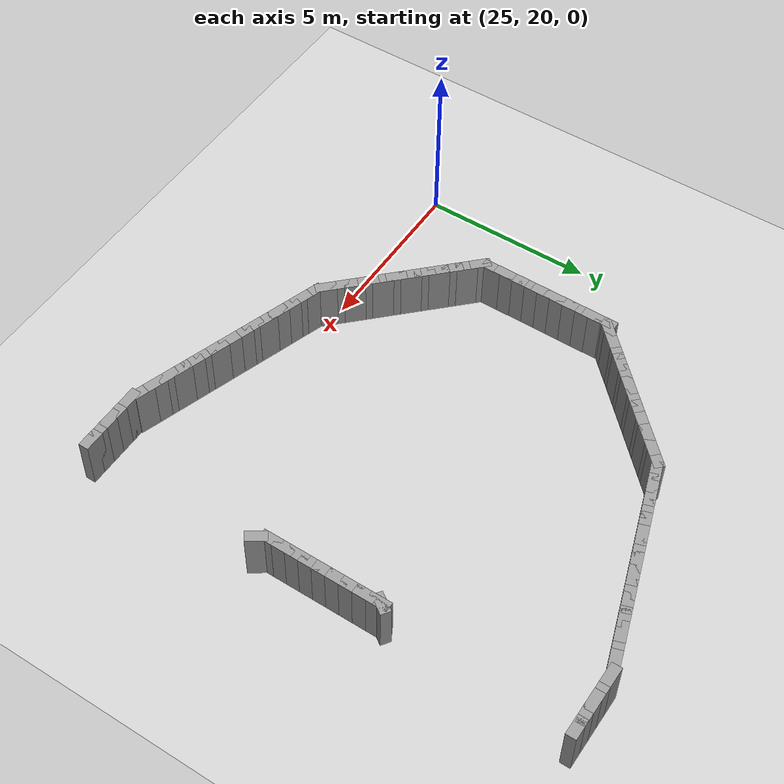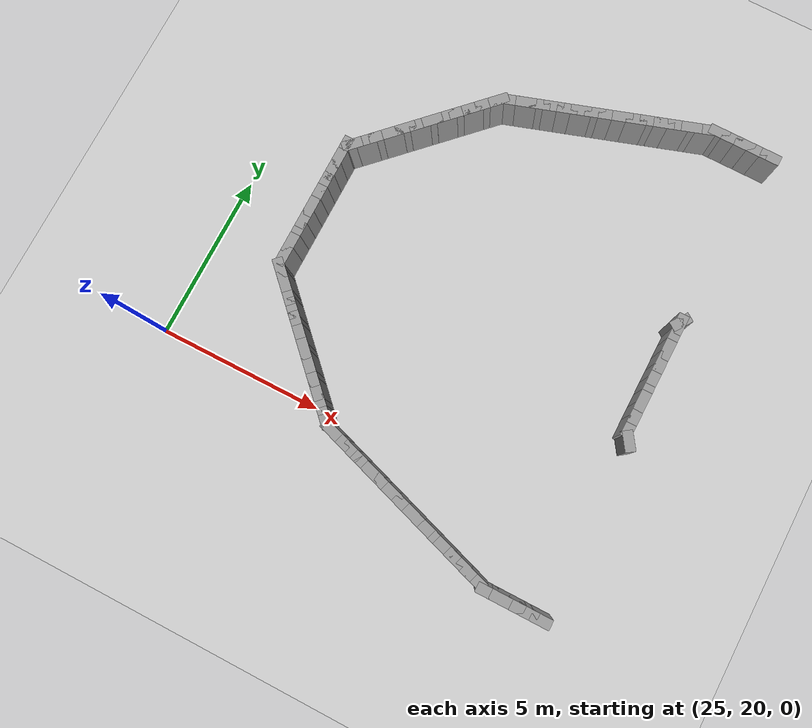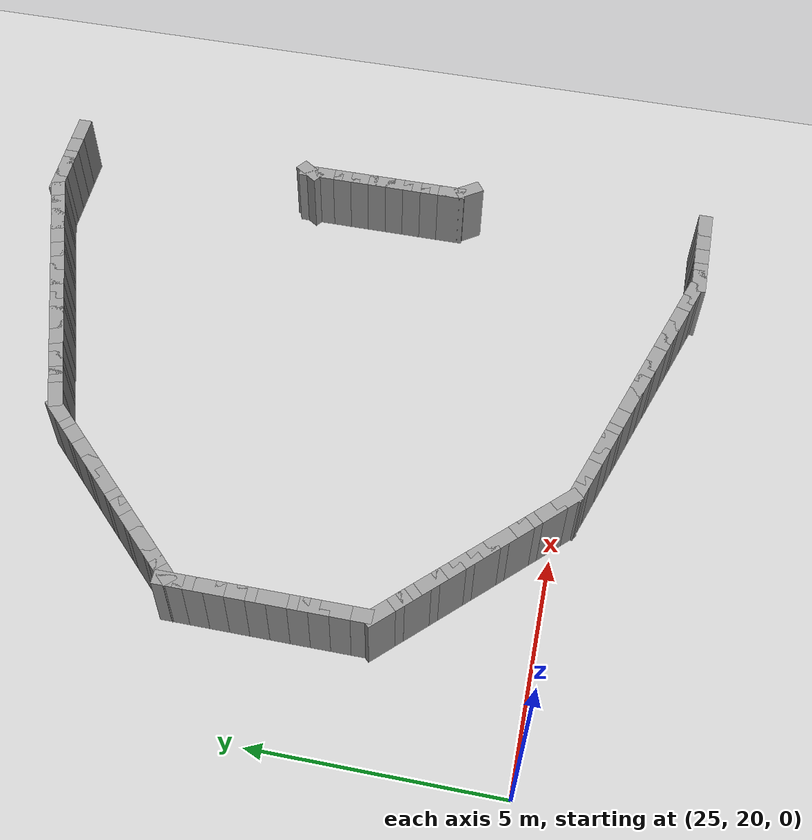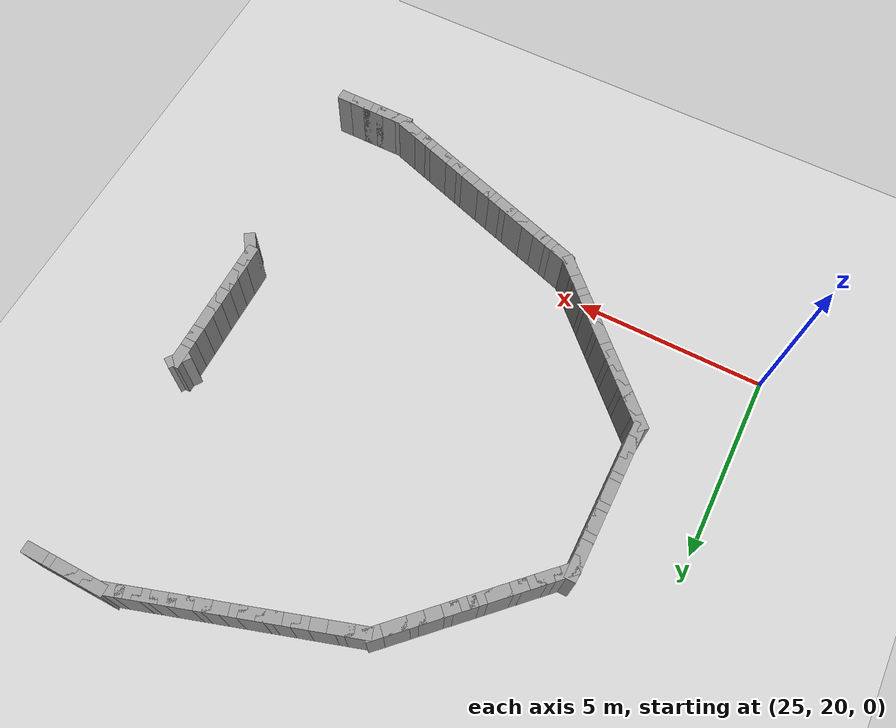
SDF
<sdf version="1.5">
 <world name="test_variable_width">
  <include><uri>model://sun</uri></include>
  <include><uri>model://ground_plane</uri></include>
  <model name="curbL_0">
   <static>true</static>
   <pose>27.376 26.938 0.750 0 0 -1.571</pose>
   <link name="link">
    <collision name="col"><geometry><box><size>0.600 0.300 1.500</size></box></geometry></collision>
    <visual name="vis">
     <geometry><box><size>0.600 0.300 1.500</size></box></geometry>
     <material><ambient>0.6 0.6 0.6 1</ambient><diffuse>0.6 0.6 0.6 1</diffuse></material>
    </visual>
   </link>
  </model>
  <model name="curbL_1">
   <static>true</static>
   <pose>27.376 26.538 0.750 0 0 -1.571</pose>
   <link name="link">
    <collision name="col"><geometry><box><size>0.600 0.300 1.500</size></box></geometry></collision>
    <visual name="vis">
     <geometry><box><size>0.600 0.300 1.500</size></box></geometry>
     <material><ambient>0.6 0.6 0.6 1</ambient><diffuse>0.6 0.6 0.6 1</diffuse></material>
    </visual>
   </link>
  </model>
  <model name="curbL_2">
   <static>true</static>
   <pose>27.376 26.138 0.750 0 0 -1.571</pose>
   <link name="link">
    <collision name="col"><geometry><box><size>0.600 0.300 1.500</size></box></geometry></collision>
    <visual name="vis">
     <geometry><box><size>0.600 0.300 1.500</size></box></geometry>
     <material><ambient>0.6 0.6 0.6 1</ambient><diffuse>0.6 0.6 0.6 1</diffuse></material>
    </visual>
   </link>
  </model>
  <model name="curbL_3">
   <static>true</static>
   <pose>27.376 25.738 0.750 0 0 -1.571</pose>
   <link name="link">
    <collision name="col"><geometry><box><size>0.600 0.300 1.500</size></box></geometry></collision>
    <visual name="vis">
     <geometry><box><size>0.600 0.300 1.500</size></box></geometry>
     <material><ambient>0.6 0.6 0.6 1</ambient><diffuse>0.6 0.6 0.6 1</diffuse></material>
    </visual>
   </link>
  </model>
  <model name="curbL_4">
   <static>true</static>
   <pose>27.376 25.338 0.750 0 0 -1.571</pose>
   <link name="link">
    <collision name="col"><geometry><box><size>0.600 0.300 1.500</size></box></geometry></collision>
    <visual name="vis">
     <geometry><box><size>0.600 0.300 1.500</size></box></geometry>
     <material><ambient>0.6 0.6 0.6 1</ambient><diffuse>0.6 0.6 0.6 1</diffuse></material>
    </visual>
   </link>
  </model>
  <model name="curbL_5">
   <static>true</static>
   <pose>27.376 24.938 0.750 0 0 -1.571</pose>
   <link name="link">
    <collision name="col"><geometry><box><size>0.600 0.300 1.500</size></box></geometry></collision>
    <visual name="vis">
     <geometry><box><size>0.600 0.300 1.500</size></box></geometry>
     <material><ambient>0.6 0.6 0.6 1</ambient><diffuse>0.6 0.6 0.6 1</diffuse></material>
    </visual>
   </link>
  </model>
  <model name="curbL_6">
   <static>true</static>
   <pose>27.376 24.538 0.750 0 0 -1.571</pose>
   <link name="link">
    <collision name="col"><geometry><box><size>0.600 0.300 1.500</size></box></geometry></collision>
    <visual name="vis">
     <geometry><box><size>0.600 0.300 1.500</size></box></geometry>
     <material><ambient>0.6 0.6 0.6 1</ambient><diffuse>0.6 0.6 0.6 1</diffuse></material>
    </visual>
   </link>
  </model>
  <model name="curbL_7">
   <static>true</static>
   <pose>27.376 24.138 0.750 0 0 -1.571</pose>
   <link name="link">
    <collision name="col"><geometry><box><size>0.600 0.300 1.500</size></box></geometry></collision>
    <visual name="vis">
     <geometry><box><size>0.600 0.300 1.500</size></box></geometry>
     <material><ambient>0.6 0.6 0.6 1</ambient><diffuse>0.6 0.6 0.6 1</diffuse></material>
    </visual>
   </link>
  </model>
  <model name="curbL_8">
   <static>true</static>
   <pose>27.376 23.738 0.750 0 0 -1.571</pose>
   <link name="link">
    <collision name="col"><geometry><box><size>0.600 0.300 1.500</size></box></geometry></collision>
    <visual name="vis">
     <geometry><box><size>0.600 0.300 1.500</size></box></geometry>
     <material><ambient>0.6 0.6 0.6 1</ambient><diffuse>0.6 0.6 0.6 1</diffuse></material>
    </visual>
   </link>
  </model>
  <model name="curbL_9">
   <static>true</static>
   <pose>27.376 23.338 0.750 0 0 -1.571</pose>
   <link name="link">
    <collision name="col"><geometry><box><size>0.600 0.300 1.500</size></box></geometry></collision>
    <visual name="vis">
     <geometry><box><size>0.600 0.300 1.500</size></box></geometry>
     <material><ambient>0.6 0.6 0.6 1</ambient><diffuse>0.6 0.6 0.6 1</diffuse></material>
    </visual>
   </link>
  </model>
  <model name="curbL_10">
   <static>true</static>
   <pose>27.464 22.974 0.750 0 0 -0.784</pose>
   <link name="link">
    <collision name="col"><geometry><box><size>0.600 0.300 1.500</size></box></geometry></collision>
    <visual name="vis">
     <geometry><box><size>0.600 0.300 1.500</size></box></geometry>
     <material><ambient>0.6 0.6 0.6 1</ambient><diffuse>0.6 0.6 0.6 1</diffuse></material>
    </visual>
   </link>
  </model>
  <model name="curbL_11">
   <static>true</static>
   <pose>27.748 22.692 0.750 0 0 -0.784</pose>
   <link name="link">
    <collision name="col"><geometry><box><size>0.600 0.300 1.500</size></box></geometry></collision>
    <visual name="vis">
     <geometry><box><size>0.600 0.300 1.500</size></box></geometry>
     <material><ambient>0.6 0.6 0.6 1</ambient><diffuse>0.6 0.6 0.6 1</diffuse></material>
    </visual>
   </link>
  </model>
  <model name="curbL_12">
   <static>true</static>
   <pose>28.031 22.409 0.750 0 0 -0.784</pose>
   <link name="link">
    <collision name="col"><geometry><box><size>0.600 0.300 1.500</size></box></geometry></collision>
    <visual name="vis">
     <geometry><box><size>0.600 0.300 1.500</size></box></geometry>
     <material><ambient>0.6 0.6 0.6 1</ambient><diffuse>0.6 0.6 0.6 1</diffuse></material>
    </visual>
   </link>
  </model>
  <model name="curbL_13">
   <static>true</static>
   <pose>28.314 22.127 0.750 0 0 -0.784</pose>
   <link name="link">
    <collision name="col"><geometry><box><size>0.600 0.300 1.500</size></box></geometry></collision>
    <visual name="vis">
     <geometry><box><size>0.600 0.300 1.500</size></box></geometry>
     <material><ambient>0.6 0.6 0.6 1</ambient><diffuse>0.6 0.6 0.6 1</diffuse></material>
    </visual>
   </link>
  </model>
  <model name="curbL_14">
   <static>true</static>
   <pose>28.597 21.844 0.750 0 0 -0.784</pose>
   <link name="link">
    <collision name="col"><geometry><box><size>0.600 0.300 1.500</size></box></geometry></collision>
    <visual name="vis">
     <geometry><box><size>0.600 0.300 1.500</size></box></geometry>
     <material><ambient>0.6 0.6 0.6 1</ambient><diffuse>0.6 0.6 0.6 1</diffuse></material>
    </visual>
   </link>
  </model>
  <model name="curbL_15">
   <static>true</static>
   <pose>28.880 21.562 0.750 0 0 -0.784</pose>
   <link name="link">
    <collision name="col"><geometry><box><size>0.600 0.300 1.500</size></box></geometry></collision>
    <visual name="vis">
     <geometry><box><size>0.600 0.300 1.500</size></box></geometry>
     <material><ambient>0.6 0.6 0.6 1</ambient><diffuse>0.6 0.6 0.6 1</diffuse></material>
    </visual>
   </link>
  </model>
  <model name="curbL_16">
   <static>true</static>
   <pose>29.163 21.279 0.750 0 0 -0.784</pose>
   <link name="link">
    <collision name="col"><geometry><box><size>0.600 0.300 1.500</size></box></geometry></collision>
    <visual name="vis">
     <geometry><box><size>0.600 0.300 1.500</size></box></geometry>
     <material><ambient>0.6 0.6 0.6 1</ambient><diffuse>0.6 0.6 0.6 1</diffuse></material>
    </visual>
   </link>
  </model>
  <model name="curbL_17">
   <static>true</static>
   <pose>29.447 20.997 0.750 0 0 -0.784</pose>
   <link name="link">
    <collision name="col"><geometry><box><size>0.600 0.300 1.500</size></box></geometry></collision>
    <visual name="vis">
     <geometry><box><size>0.600 0.300 1.500</size></box></geometry>
     <material><ambient>0.6 0.6 0.6 1</ambient><diffuse>0.6 0.6 0.6 1</diffuse></material>
    </visual>
   </link>
  </model>
  <model name="curbL_18">
   <static>true</static>
   <pose>29.730 20.714 0.750 0 0 -0.784</pose>
   <link name="link">
    <collision name="col"><geometry><box><size>0.600 0.300 1.500</size></box></geometry></collision>
    <visual name="vis">
     <geometry><box><size>0.600 0.300 1.500</size></box></geometry>
     <material><ambient>0.6 0.6 0.6 1</ambient><diffuse>0.6 0.6 0.6 1</diffuse></material>
    </visual>
   </link>
  </model>
  <model name="curbL_19">
   <static>true</static>
   <pose>30.013 20.432 0.750 0 0 -0.784</pose>
   <link name="link">
    <collision name="col"><geometry><box><size>0.600 0.300 1.500</size></box></geometry></collision>
    <visual name="vis">
     <geometry><box><size>0.600 0.300 1.500</size></box></geometry>
     <material><ambient>0.6 0.6 0.6 1</ambient><diffuse>0.6 0.6 0.6 1</diffuse></material>
    </visual>
   </link>
  </model>
  <model name="curbL_20">
   <static>true</static>
   <pose>30.296 20.149 0.750 0 0 -0.784</pose>
   <link name="link">
    <collision name="col"><geometry><box><size>0.600 0.300 1.500</size></box></geometry></collision>
    <visual name="vis">
     <geometry><box><size>0.600 0.300 1.500</size></box></geometry>
     <material><ambient>0.6 0.6 0.6 1</ambient><diffuse>0.6 0.6 0.6 1</diffuse></material>
    </visual>
   </link>
  </model>
  <model name="curbL_21">
   <static>true</static>
   <pose>30.579 19.867 0.750 0 0 -0.784</pose>
   <link name="link">
    <collision name="col"><geometry><box><size>0.600 0.300 1.500</size></box></geometry></collision>
    <visual name="vis">
     <geometry><box><size>0.600 0.300 1.500</size></box></geometry>
     <material><ambient>0.6 0.6 0.6 1</ambient><diffuse>0.6 0.6 0.6 1</diffuse></material>
    </visual>
   </link>
  </model>
  <model name="curbL_22">
   <static>true</static>
   <pose>30.906 19.655 0.750 0 0 -0.316</pose>
   <link name="link">
    <collision name="col"><geometry><box><size>0.600 0.300 1.500</size></box></geometry></collision>
    <visual name="vis">
     <geometry><box><size>0.600 0.300 1.500</size></box></geometry>
     <material><ambient>0.6 0.6 0.6 1</ambient><diffuse>0.6 0.6 0.6 1</diffuse></material>
    </visual>
   </link>
  </model>
  <model name="curbL_23">
   <static>true</static>
   <pose>31.286 19.530 0.750 0 0 -0.316</pose>
   <link name="link">
    <collision name="col"><geometry><box><size>0.600 0.300 1.500</size></box></geometry></collision>
    <visual name="vis">
     <geometry><box><size>0.600 0.300 1.500</size></box></geometry>
     <material><ambient>0.6 0.6 0.6 1</ambient><diffuse>0.6 0.6 0.6 1</diffuse></material>
    </visual>
   </link>
  </model>
  <model name="curbL_24">
   <static>true</static>
   <pose>31.666 19.406 0.750 0 0 -0.316</pose>
   <link name="link">
    <collision name="col"><geometry><box><size>0.600 0.300 1.500</size></box></geometry></collision>
    <visual name="vis">
     <geometry><box><size>0.600 0.300 1.500</size></box></geometry>
     <material><ambient>0.6 0.6 0.6 1</ambient><diffuse>0.6 0.6 0.6 1</diffuse></material>
    </visual>
   </link>
  </model>
  <model name="curbL_25">
   <static>true</static>
   <pose>32.046 19.282 0.750 0 0 -0.316</pose>
   <link name="link">
    <collision name="col"><geometry><box><size>0.600 0.300 1.500</size></box></geometry></collision>
    <visual name="vis">
     <geometry><box><size>0.600 0.300 1.500</size></box></geometry>
     <material><ambient>0.6 0.6 0.6 1</ambient><diffuse>0.6 0.6 0.6 1</diffuse></material>
    </visual>
   </link>
  </model>
  <model name="curbL_26">
   <static>true</static>
   <pose>32.426 19.158 0.750 0 0 -0.316</pose>
   <link name="link">
    <collision name="col"><geometry><box><size>0.600 0.300 1.500</size></box></geometry></collision>
    <visual name="vis">
     <geometry><box><size>0.600 0.300 1.500</size></box></geometry>
     <material><ambient>0.6 0.6 0.6 1</ambient><diffuse>0.6 0.6 0.6 1</diffuse></material>
    </visual>
   </link>
  </model>
  <model name="curbL_27">
   <static>true</static>
   <pose>32.807 19.033 0.750 0 0 -0.316</pose>
   <link name="link">
    <collision name="col"><geometry><box><size>0.600 0.300 1.500</size></box></geometry></collision>
    <visual name="vis">
     <geometry><box><size>0.600 0.300 1.500</size></box></geometry>
     <material><ambient>0.6 0.6 0.6 1</ambient><diffuse>0.6 0.6 0.6 1</diffuse></material>
    </visual>
   </link>
  </model>
  <model name="curbL_28">
   <static>true</static>
   <pose>33.187 18.909 0.750 0 0 -0.316</pose>
   <link name="link">
    <collision name="col"><geometry><box><size>0.600 0.300 1.500</size></box></geometry></collision>
    <visual name="vis">
     <geometry><box><size>0.600 0.300 1.500</size></box></geometry>
     <material><ambient>0.6 0.6 0.6 1</ambient><diffuse>0.6 0.6 0.6 1</diffuse></material>
    </visual>
   </link>
  </model>
  <model name="curbL_29">
   <static>true</static>
   <pose>33.567 18.785 0.750 0 0 -0.316</pose>
   <link name="link">
    <collision name="col"><geometry><box><size>0.600 0.300 1.500</size></box></geometry></collision>
    <visual name="vis">
     <geometry><box><size>0.600 0.300 1.500</size></box></geometry>
     <material><ambient>0.6 0.6 0.6 1</ambient><diffuse>0.6 0.6 0.6 1</diffuse></material>
    </visual>
   </link>
  </model>
  <model name="curbL_30">
   <static>true</static>
   <pose>33.947 18.661 0.750 0 0 -0.316</pose>
   <link name="link">
    <collision name="col"><geometry><box><size>0.600 0.300 1.500</size></box></geometry></collision>
    <visual name="vis">
     <geometry><box><size>0.600 0.300 1.500</size></box></geometry>
     <material><ambient>0.6 0.6 0.6 1</ambient><diffuse>0.6 0.6 0.6 1</diffuse></material>
    </visual>
   </link>
  </model>
  <model name="curbL_31">
   <static>true</static>
   <pose>34.328 18.536 0.750 0 0 -0.316</pose>
   <link name="link">
    <collision name="col"><geometry><box><size>0.600 0.300 1.500</size></box></geometry></collision>
    <visual name="vis">
     <geometry><box><size>0.600 0.300 1.500</size></box></geometry>
     <material><ambient>0.6 0.6 0.6 1</ambient><diffuse>0.6 0.6 0.6 1</diffuse></material>
    </visual>
   </link>
  </model>
  <model name="curbL_32">
   <static>true</static>
   <pose>34.708 18.412 0.750 0 0 -0.316</pose>
   <link name="link">
    <collision name="col"><geometry><box><size>0.600 0.300 1.500</size></box></geometry></collision>
    <visual name="vis">
     <geometry><box><size>0.600 0.300 1.500</size></box></geometry>
     <material><ambient>0.6 0.6 0.6 1</ambient><diffuse>0.6 0.6 0.6 1</diffuse></material>
    </visual>
   </link>
  </model>
  <model name="curbL_33">
   <static>true</static>
   <pose>35.088 18.288 0.750 0 0 -0.316</pose>
   <link name="link">
    <collision name="col"><geometry><box><size>0.600 0.300 1.500</size></box></geometry></collision>
    <visual name="vis">
     <geometry><box><size>0.600 0.300 1.500</size></box></geometry>
     <material><ambient>0.6 0.6 0.6 1</ambient><diffuse>0.6 0.6 0.6 1</diffuse></material>
    </visual>
   </link>
  </model>
  <model name="curbL_34">
   <static>true</static>
   <pose>35.468 18.163 0.750 0 0 -0.316</pose>
   <link name="link">
    <collision name="col"><geometry><box><size>0.600 0.300 1.500</size></box></geometry></collision>
    <visual name="vis">
     <geometry><box><size>0.600 0.300 1.500</size></box></geometry>
     <material><ambient>0.6 0.6 0.6 1</ambient><diffuse>0.6 0.6 0.6 1</diffuse></material>
    </visual>
   </link>
  </model>
  <model name="curbL_35">
   <static>true</static>
   <pose>35.848 18.039 0.750 0 0 -0.316</pose>
   <link name="link">
    <collision name="col"><geometry><box><size>0.600 0.300 1.500</size></box></geometry></collision>
    <visual name="vis">
     <geometry><box><size>0.600 0.300 1.500</size></box></geometry>
     <material><ambient>0.6 0.6 0.6 1</ambient><diffuse>0.6 0.6 0.6 1</diffuse></material>
    </visual>
   </link>
  </model>
  <model name="curbL_36">
   <static>true</static>
   <pose>36.229 17.915 0.750 0 0 -0.316</pose>
   <link name="link">
    <collision name="col"><geometry><box><size>0.600 0.300 1.500</size></box></geometry></collision>
    <visual name="vis">
     <geometry><box><size>0.600 0.300 1.500</size></box></geometry>
     <material><ambient>0.6 0.6 0.6 1</ambient><diffuse>0.6 0.6 0.6 1</diffuse></material>
    </visual>
   </link>
  </model>
  <model name="curbL_37">
   <static>true</static>
   <pose>36.609 17.791 0.750 0 0 0.000</pose>
   <link name="link">
    <collision name="col"><geometry><box><size>0.600 0.300 1.500</size></box></geometry></collision>
    <visual name="vis">
     <geometry><box><size>0.600 0.300 1.500</size></box></geometry>
     <material><ambient>0.6 0.6 0.6 1</ambient><diffuse>0.6 0.6 0.6 1</diffuse></material>
    </visual>
   </link>
  </model>
  <model name="curbL_38">
   <static>true</static>
   <pose>37.009 17.791 0.750 0 0 0.000</pose>
   <link name="link">
    <collision name="col"><geometry><box><size>0.600 0.300 1.500</size></box></geometry></collision>
    <visual name="vis">
     <geometry><box><size>0.600 0.300 1.500</size></box></geometry>
     <material><ambient>0.6 0.6 0.6 1</ambient><diffuse>0.6 0.6 0.6 1</diffuse></material>
    </visual>
   </link>
  </model>
  <model name="curbL_39">
   <static>true</static>
   <pose>37.409 17.791 0.750 0 0 0.000</pose>
   <link name="link">
    <collision name="col"><geometry><box><size>0.600 0.300 1.500</size></box></geometry></collision>
    <visual name="vis">
     <geometry><box><size>0.600 0.300 1.500</size></box></geometry>
     <material><ambient>0.6 0.6 0.6 1</ambient><diffuse>0.6 0.6 0.6 1</diffuse></material>
    </visual>
   </link>
  </model>
  <model name="curbL_40">
   <static>true</static>
   <pose>37.809 17.791 0.750 0 0 0.000</pose>
   <link name="link">
    <collision name="col"><geometry><box><size>0.600 0.300 1.500</size></box></geometry></collision>
    <visual name="vis">
     <geometry><box><size>0.600 0.300 1.500</size></box></geometry>
     <material><ambient>0.6 0.6 0.6 1</ambient><diffuse>0.6 0.6 0.6 1</diffuse></material>
    </visual>
   </link>
  </model>
  <model name="curbL_41">
   <static>true</static>
   <pose>38.209 17.791 0.750 0 0 0.000</pose>
   <link name="link">
    <collision name="col"><geometry><box><size>0.600 0.300 1.500</size></box></geometry></collision>
    <visual name="vis">
     <geometry><box><size>0.600 0.300 1.500</size></box></geometry>
     <material><ambient>0.6 0.6 0.6 1</ambient><diffuse>0.6 0.6 0.6 1</diffuse></material>
    </visual>
   </link>
  </model>
  <model name="curbL_131">
   <static>true</static>
   <pose>38.298 32.209 0.750 0 0 3.142</pose>
   <link name="link">
    <collision name="col"><geometry><box><size>0.600 0.300 1.500</size></box></geometry></collision>
    <visual name="vis">
     <geometry><box><size>0.600 0.300 1.500</size></box></geometry>
     <material><ambient>0.6 0.6 0.6 1</ambient><diffuse>0.6 0.6 0.6 1</diffuse></material>
    </visual>
   </link>
  </model>
  <model name="curbL_132">
   <static>true</static>
   <pose>37.898 32.209 0.750 0 0 3.142</pose>
   <link name="link">
    <collision name="col"><geometry><box><size>0.600 0.300 1.500</size></box></geometry></collision>
    <visual name="vis">
     <geometry><box><size>0.600 0.300 1.500</size></box></geometry>
     <material><ambient>0.6 0.6 0.6 1</ambient><diffuse>0.6 0.6 0.6 1</diffuse></material>
    </visual>
   </link>
  </model>
  <model name="curbL_133">
   <static>true</static>
   <pose>37.498 32.209 0.750 0 0 3.142</pose>
   <link name="link">
    <collision name="col"><geometry><box><size>0.600 0.300 1.500</size></box></geometry></collision>
    <visual name="vis">
     <geometry><box><size>0.600 0.300 1.500</size></box></geometry>
     <material><ambient>0.6 0.6 0.6 1</ambient><diffuse>0.6 0.6 0.6 1</diffuse></material>
    </visual>
   </link>
  </model>
  <model name="curbL_134">
   <static>true</static>
   <pose>37.098 32.209 0.750 0 0 3.142</pose>
   <link name="link">
    <collision name="col"><geometry><box><size>0.600 0.300 1.500</size></box></geometry></collision>
    <visual name="vis">
     <geometry><box><size>0.600 0.300 1.500</size></box></geometry>
     <material><ambient>0.6 0.6 0.6 1</ambient><diffuse>0.6 0.6 0.6 1</diffuse></material>
    </visual>
   </link>
  </model>
  <model name="curbL_135">
   <static>true</static>
   <pose>36.698 32.209 0.750 0 0 3.142</pose>
   <link name="link">
    <collision name="col"><geometry><box><size>0.600 0.300 1.500</size></box></geometry></collision>
    <visual name="vis">
     <geometry><box><size>0.600 0.300 1.500</size></box></geometry>
     <material><ambient>0.6 0.6 0.6 1</ambient><diffuse>0.6 0.6 0.6 1</diffuse></material>
    </visual>
   </link>
  </model>
  <model name="curbL_136">
   <static>true</static>
   <pose>36.313 32.113 0.750 0 0 -2.826</pose>
   <link name="link">
    <collision name="col"><geometry><box><size>0.600 0.300 1.500</size></box></geometry></collision>
    <visual name="vis">
     <geometry><box><size>0.600 0.300 1.500</size></box></geometry>
     <material><ambient>0.6 0.6 0.6 1</ambient><diffuse>0.6 0.6 0.6 1</diffuse></material>
    </visual>
   </link>
  </model>
  <model name="curbL_137">
   <static>true</static>
   <pose>35.933 31.989 0.750 0 0 -2.826</pose>
   <link name="link">
    <collision name="col"><geometry><box><size>0.600 0.300 1.500</size></box></geometry></collision>
    <visual name="vis">
     <geometry><box><size>0.600 0.300 1.500</size></box></geometry>
     <material><ambient>0.6 0.6 0.6 1</ambient><diffuse>0.6 0.6 0.6 1</diffuse></material>
    </visual>
   </link>
  </model>
  <model name="curbL_138">
   <static>true</static>
   <pose>35.553 31.864 0.750 0 0 -2.826</pose>
   <link name="link">
    <collision name="col"><geometry><box><size>0.600 0.300 1.500</size></box></geometry></collision>
    <visual name="vis">
     <geometry><box><size>0.600 0.300 1.500</size></box></geometry>
     <material><ambient>0.6 0.6 0.6 1</ambient><diffuse>0.6 0.6 0.6 1</diffuse></material>
    </visual>
   </link>
  </model>
  <model name="curbL_139">
   <static>true</static>
   <pose>35.173 31.740 0.750 0 0 -2.826</pose>
   <link name="link">
    <collision name="col"><geometry><box><size>0.600 0.300 1.500</size></box></geometry></collision>
    <visual name="vis">
     <geometry><box><size>0.600 0.300 1.500</size></box></geometry>
     <material><ambient>0.6 0.6 0.6 1</ambient><diffuse>0.6 0.6 0.6 1</diffuse></material>
    </visual>
   </link>
  </model>
  <model name="curbL_140">
   <static>true</static>
   <pose>34.792 31.616 0.750 0 0 -2.826</pose>
   <link name="link">
    <collision name="col"><geometry><box><size>0.600 0.300 1.500</size></box></geometry></collision>
    <visual name="vis">
     <geometry><box><size>0.600 0.300 1.500</size></box></geometry>
     <material><ambient>0.6 0.6 0.6 1</ambient><diffuse>0.6 0.6 0.6 1</diffuse></material>
    </visual>
   </link>
  </model>
  <model name="curbL_141">
   <static>true</static>
   <pose>34.412 31.491 0.750 0 0 -2.826</pose>
   <link name="link">
    <collision name="col"><geometry><box><size>0.600 0.300 1.500</size></box></geometry></collision>
    <visual name="vis">
     <geometry><box><size>0.600 0.300 1.500</size></box></geometry>
     <material><ambient>0.6 0.6 0.6 1</ambient><diffuse>0.6 0.6 0.6 1</diffuse></material>
    </visual>
   </link>
  </model>
  <model name="curbL_142">
   <static>true</static>
   <pose>34.032 31.367 0.750 0 0 -2.826</pose>
   <link name="link">
    <collision name="col"><geometry><box><size>0.600 0.300 1.500</size></box></geometry></collision>
    <visual name="vis">
     <geometry><box><size>0.600 0.300 1.500</size></box></geometry>
     <material><ambient>0.6 0.6 0.6 1</ambient><diffuse>0.6 0.6 0.6 1</diffuse></material>
    </visual>
   </link>
  </model>
  <model name="curbL_143">
   <static>true</static>
   <pose>33.652 31.243 0.750 0 0 -2.826</pose>
   <link name="link">
    <collision name="col"><geometry><box><size>0.600 0.300 1.500</size></box></geometry></collision>
    <visual name="vis">
     <geometry><box><size>0.600 0.300 1.500</size></box></geometry>
     <material><ambient>0.6 0.6 0.6 1</ambient><diffuse>0.6 0.6 0.6 1</diffuse></material>
    </visual>
   </link>
  </model>
  <model name="curbL_144">
   <static>true</static>
   <pose>33.272 31.119 0.750 0 0 -2.826</pose>
   <link name="link">
    <collision name="col"><geometry><box><size>0.600 0.300 1.500</size></box></geometry></collision>
    <visual name="vis">
     <geometry><box><size>0.600 0.300 1.500</size></box></geometry>
     <material><ambient>0.6 0.6 0.6 1</ambient><diffuse>0.6 0.6 0.6 1</diffuse></material>
    </visual>
   </link>
  </model>
  <model name="curbL_145">
   <static>true</static>
   <pose>32.891 30.994 0.750 0 0 -2.826</pose>
   <link name="link">
    <collision name="col"><geometry><box><size>0.600 0.300 1.500</size></box></geometry></collision>
    <visual name="vis">
     <geometry><box><size>0.600 0.300 1.500</size></box></geometry>
     <material><ambient>0.6 0.6 0.6 1</ambient><diffuse>0.6 0.6 0.6 1</diffuse></material>
    </visual>
   </link>
  </model>
  <model name="curbL_146">
   <static>true</static>
   <pose>32.511 30.870 0.750 0 0 -2.826</pose>
   <link name="link">
    <collision name="col"><geometry><box><size>0.600 0.300 1.500</size></box></geometry></collision>
    <visual name="vis">
     <geometry><box><size>0.600 0.300 1.500</size></box></geometry>
     <material><ambient>0.6 0.6 0.6 1</ambient><diffuse>0.6 0.6 0.6 1</diffuse></material>
    </visual>
   </link>
  </model>
  <model name="curbL_147">
   <static>true</static>
   <pose>32.131 30.746 0.750 0 0 -2.826</pose>
   <link name="link">
    <collision name="col"><geometry><box><size>0.600 0.300 1.500</size></box></geometry></collision>
    <visual name="vis">
     <geometry><box><size>0.600 0.300 1.500</size></box></geometry>
     <material><ambient>0.6 0.6 0.6 1</ambient><diffuse>0.6 0.6 0.6 1</diffuse></material>
    </visual>
   </link>
  </model>
  <model name="curbL_148">
   <static>true</static>
   <pose>31.751 30.622 0.750 0 0 -2.826</pose>
   <link name="link">
    <collision name="col"><geometry><box><size>0.600 0.300 1.500</size></box></geometry></collision>
    <visual name="vis">
     <geometry><box><size>0.600 0.300 1.500</size></box></geometry>
     <material><ambient>0.6 0.6 0.6 1</ambient><diffuse>0.6 0.6 0.6 1</diffuse></material>
    </visual>
   </link>
  </model>
  <model name="curbL_149">
   <static>true</static>
   <pose>31.371 30.497 0.750 0 0 -2.826</pose>
   <link name="link">
    <collision name="col"><geometry><box><size>0.600 0.300 1.500</size></box></geometry></collision>
    <visual name="vis">
     <geometry><box><size>0.600 0.300 1.500</size></box></geometry>
     <material><ambient>0.6 0.6 0.6 1</ambient><diffuse>0.6 0.6 0.6 1</diffuse></material>
    </visual>
   </link>
  </model>
  <model name="curbL_150">
   <static>true</static>
   <pose>30.990 30.373 0.750 0 0 -2.826</pose>
   <link name="link">
    <collision name="col"><geometry><box><size>0.600 0.300 1.500</size></box></geometry></collision>
    <visual name="vis">
     <geometry><box><size>0.600 0.300 1.500</size></box></geometry>
     <material><ambient>0.6 0.6 0.6 1</ambient><diffuse>0.6 0.6 0.6 1</diffuse></material>
    </visual>
   </link>
  </model>
  <model name="curbL_151">
   <static>true</static>
   <pose>30.642 30.196 0.750 0 0 -2.357</pose>
   <link name="link">
    <collision name="col"><geometry><box><size>0.600 0.300 1.500</size></box></geometry></collision>
    <visual name="vis">
     <geometry><box><size>0.600 0.300 1.500</size></box></geometry>
     <material><ambient>0.6 0.6 0.6 1</ambient><diffuse>0.6 0.6 0.6 1</diffuse></material>
    </visual>
   </link>
  </model>
  <model name="curbL_152">
   <static>true</static>
   <pose>30.359 29.914 0.750 0 0 -2.357</pose>
   <link name="link">
    <collision name="col"><geometry><box><size>0.600 0.300 1.500</size></box></geometry></collision>
    <visual name="vis">
     <geometry><box><size>0.600 0.300 1.500</size></box></geometry>
     <material><ambient>0.6 0.6 0.6 1</ambient><diffuse>0.6 0.6 0.6 1</diffuse></material>
    </visual>
   </link>
  </model>
  <model name="curbL_153">
   <static>true</static>
   <pose>30.076 29.631 0.750 0 0 -2.357</pose>
   <link name="link">
    <collision name="col"><geometry><box><size>0.600 0.300 1.500</size></box></geometry></collision>
    <visual name="vis">
     <geometry><box><size>0.600 0.300 1.500</size></box></geometry>
     <material><ambient>0.6 0.6 0.6 1</ambient><diffuse>0.6 0.6 0.6 1</diffuse></material>
    </visual>
   </link>
  </model>
  <model name="curbL_154">
   <static>true</static>
   <pose>29.793 29.349 0.750 0 0 -2.357</pose>
   <link name="link">
    <collision name="col"><geometry><box><size>0.600 0.300 1.500</size></box></geometry></collision>
    <visual name="vis">
     <geometry><box><size>0.600 0.300 1.500</size></box></geometry>
     <material><ambient>0.6 0.6 0.6 1</ambient><diffuse>0.6 0.6 0.6 1</diffuse></material>
    </visual>
   </link>
  </model>
  <model name="curbL_155">
   <static>true</static>
   <pose>29.510 29.066 0.750 0 0 -2.357</pose>
   <link name="link">
    <collision name="col"><geometry><box><size>0.600 0.300 1.500</size></box></geometry></collision>
    <visual name="vis">
     <geometry><box><size>0.600 0.300 1.500</size></box></geometry>
     <material><ambient>0.6 0.6 0.6 1</ambient><diffuse>0.6 0.6 0.6 1</diffuse></material>
    </visual>
   </link>
  </model>
  <model name="curbL_156">
   <static>true</static>
   <pose>29.226 28.784 0.750 0 0 -2.357</pose>
   <link name="link">
    <collision name="col"><geometry><box><size>0.600 0.300 1.500</size></box></geometry></collision>
    <visual name="vis">
     <geometry><box><size>0.600 0.300 1.500</size></box></geometry>
     <material><ambient>0.6 0.6 0.6 1</ambient><diffuse>0.6 0.6 0.6 1</diffuse></material>
    </visual>
   </link>
  </model>
  <model name="curbL_157">
   <static>true</static>
   <pose>28.943 28.501 0.750 0 0 -2.357</pose>
   <link name="link">
    <collision name="col"><geometry><box><size>0.600 0.300 1.500</size></box></geometry></collision>
    <visual name="vis">
     <geometry><box><size>0.600 0.300 1.500</size></box></geometry>
     <material><ambient>0.6 0.6 0.6 1</ambient><diffuse>0.6 0.6 0.6 1</diffuse></material>
    </visual>
   </link>
  </model>
  <model name="curbL_158">
   <static>true</static>
   <pose>28.660 28.219 0.750 0 0 -2.357</pose>
   <link name="link">
    <collision name="col"><geometry><box><size>0.600 0.300 1.500</size></box></geometry></collision>
    <visual name="vis">
     <geometry><box><size>0.600 0.300 1.500</size></box></geometry>
     <material><ambient>0.6 0.6 0.6 1</ambient><diffuse>0.6 0.6 0.6 1</diffuse></material>
    </visual>
   </link>
  </model>
  <model name="curbL_159">
   <static>true</static>
   <pose>28.377 27.936 0.750 0 0 -2.357</pose>
   <link name="link">
    <collision name="col"><geometry><box><size>0.600 0.300 1.500</size></box></geometry></collision>
    <visual name="vis">
     <geometry><box><size>0.600 0.300 1.500</size></box></geometry>
     <material><ambient>0.6 0.6 0.6 1</ambient><diffuse>0.6 0.6 0.6 1</diffuse></material>
    </visual>
   </link>
  </model>
  <model name="curbL_160">
   <static>true</static>
   <pose>28.094 27.654 0.750 0 0 -2.357</pose>
   <link name="link">
    <collision name="col"><geometry><box><size>0.600 0.300 1.500</size></box></geometry></collision>
    <visual name="vis">
     <geometry><box><size>0.600 0.300 1.500</size></box></geometry>
     <material><ambient>0.6 0.6 0.6 1</ambient><diffuse>0.6 0.6 0.6 1</diffuse></material>
    </visual>
   </link>
  </model>
  <model name="curbL_161">
   <static>true</static>
   <pose>27.811 27.371 0.750 0 0 -2.357</pose>
   <link name="link">
    <collision name="col"><geometry><box><size>0.600 0.300 1.500</size></box></geometry></collision>
    <visual name="vis">
     <geometry><box><size>0.600 0.300 1.500</size></box></geometry>
     <material><ambient>0.6 0.6 0.6 1</ambient><diffuse>0.6 0.6 0.6 1</diffuse></material>
    </visual>
   </link>
  </model>
  <model name="curbL_162">
   <static>true</static>
   <pose>27.527 27.089 0.750 0 0 -2.357</pose>
   <link name="link">
    <collision name="col"><geometry><box><size>0.600 0.300 1.500</size></box></geometry></collision>
    <visual name="vis">
     <geometry><box><size>0.600 0.300 1.500</size></box></geometry>
     <material><ambient>0.6 0.6 0.6 1</ambient><diffuse>0.6 0.6 0.6 1</diffuse></material>
    </visual>
   </link>
  </model>
  <model name="curbR_0">
   <static>true</static>
   <pose>38.079 26.708 0.750 0 0 0.965</pose>
   <link name="link">
    <collision name="col"><geometry><box><size>0.600 0.300 1.500</size></box></geometry></collision>
    <visual name="vis">
     <geometry><box><size>0.600 0.300 1.500</size></box></geometry>
     <material><ambient>0.6 0.6 0.6 1</ambient><diffuse>0.6 0.6 0.6 1</diffuse></material>
    </visual>
   </link>
  </model>
  <model name="curbR_167">
   <static>true</static>
   <pose>38.222 23.085 0.750 0 0 2.176</pose>
   <link name="link">
    <collision name="col"><geometry><box><size>0.600 0.300 1.500</size></box></geometry></collision>
    <visual name="vis">
     <geometry><box><size>0.600 0.300 1.500</size></box></geometry>
     <material><ambient>0.6 0.6 0.6 1</ambient><diffuse>0.6 0.6 0.6 1</diffuse></material>
    </visual>
   </link>
  </model>
  <model name="curbR_168">
   <static>true</static>
   <pose>38.079 23.440 0.750 0 0 1.571</pose>
   <link name="link">
    <collision name="col"><geometry><box><size>0.600 0.300 1.500</size></box></geometry></collision>
    <visual name="vis">
     <geometry><box><size>0.600 0.300 1.500</size></box></geometry>
     <material><ambient>0.6 0.6 0.6 1</ambient><diffuse>0.6 0.6 0.6 1</diffuse></material>
    </visual>
   </link>
  </model>
  <model name="curbR_169">
   <static>true</static>
   <pose>38.079 23.840 0.750 0 0 1.571</pose>
   <link name="link">
    <collision name="col"><geometry><box><size>0.600 0.300 1.500</size></box></geometry></collision>
    <visual name="vis">
     <geometry><box><size>0.600 0.300 1.500</size></box></geometry>
     <material><ambient>0.6 0.6 0.6 1</ambient><diffuse>0.6 0.6 0.6 1</diffuse></material>
    </visual>
   </link>
  </model>
  <model name="curbR_170">
   <static>true</static>
   <pose>38.079 24.240 0.750 0 0 1.571</pose>
   <link name="link">
    <collision name="col"><geometry><box><size>0.600 0.300 1.500</size></box></geometry></collision>
    <visual name="vis">
     <geometry><box><size>0.600 0.300 1.500</size></box></geometry>
     <material><ambient>0.6 0.6 0.6 1</ambient><diffuse>0.6 0.6 0.6 1</diffuse></material>
    </visual>
   </link>
  </model>
  <model name="curbR_171">
   <static>true</static>
   <pose>38.079 24.640 0.750 0 0 1.571</pose>
   <link name="link">
    <collision name="col"><geometry><box><size>0.600 0.300 1.500</size></box></geometry></collision>
    <visual name="vis">
     <geometry><box><size>0.600 0.300 1.500</size></box></geometry>
     <material><ambient>0.6 0.6 0.6 1</ambient><diffuse>0.6 0.6 0.6 1</diffuse></material>
    </visual>
   </link>
  </model>
  <model name="curbR_172">
   <static>true</static>
   <pose>38.079 25.040 0.750 0 0 1.571</pose>
   <link name="link">
    <collision name="col"><geometry><box><size>0.600 0.300 1.500</size></box></geometry></collision>
    <visual name="vis">
     <geometry><box><size>0.600 0.300 1.500</size></box></geometry>
     <material><ambient>0.6 0.6 0.6 1</ambient><diffuse>0.6 0.6 0.6 1</diffuse></material>
    </visual>
   </link>
  </model>
  <model name="curbR_173">
   <static>true</static>
   <pose>38.079 25.440 0.750 0 0 1.571</pose>
   <link name="link">
    <collision name="col"><geometry><box><size>0.600 0.300 1.500</size></box></geometry></collision>
    <visual name="vis">
     <geometry><box><size>0.600 0.300 1.500</size></box></geometry>
     <material><ambient>0.6 0.6 0.6 1</ambient><diffuse>0.6 0.6 0.6 1</diffuse></material>
    </visual>
   </link>
  </model>
  <model name="curbR_174">
   <static>true</static>
   <pose>38.079 25.840 0.750 0 0 1.571</pose>
   <link name="link">
    <collision name="col"><geometry><box><size>0.600 0.300 1.500</size></box></geometry></collision>
    <visual name="vis">
     <geometry><box><size>0.600 0.300 1.500</size></box></geometry>
     <material><ambient>0.6 0.6 0.6 1</ambient><diffuse>0.6 0.6 0.6 1</diffuse></material>
    </visual>
   </link>
  </model>
  <model name="curbR_175">
   <static>true</static>
   <pose>38.079 26.240 0.750 0 0 1.571</pose>
   <link name="link">
    <collision name="col"><geometry><box><size>0.600 0.300 1.500</size></box></geometry></collision>
    <visual name="vis">
     <geometry><box><size>0.600 0.300 1.500</size></box></geometry>
     <material><ambient>0.6 0.6 0.6 1</ambient><diffuse>0.6 0.6 0.6 1</diffuse></material>
    </visual>
   </link>
  </model>
  <model name="curbR_176">
   <static>true</static>
   <pose>38.079 26.640 0.750 0 0 1.571</pose>
   <link name="link">
    <collision name="col"><geometry><box><size>0.600 0.300 1.500</size></box></geometry></collision>
    <visual name="vis">
     <geometry><box><size>0.600 0.300 1.500</size></box></geometry>
     <material><ambient>0.6 0.6 0.6 1</ambient><diffuse>0.6 0.6 0.6 1</diffuse></material>
    </visual>
   </link>
  </model>
 </world>
</sdf>
